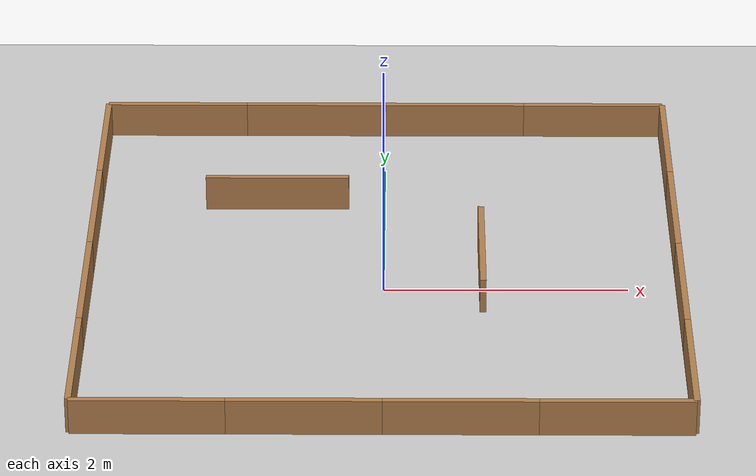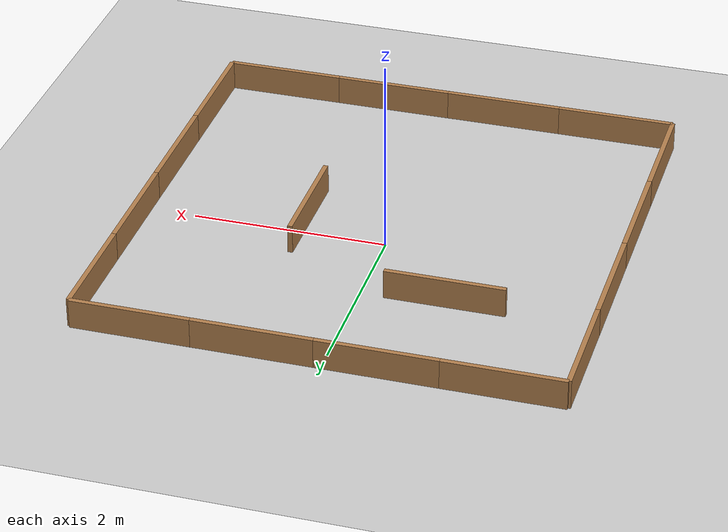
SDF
<?xml version='1.0' encoding='utf-8'?>
<sdf version="1.8">
  <world name="group3_custom">
    <physics name="default_physics" type="ode">
      <max_step_size>0.005</max_step_size>
      <real_time_factor>1.0</real_time_factor>
      <real_time_update_rate>200</real_time_update_rate>
    </physics>
    <plugin filename="libignition-gazebo6-physics-system.so" name="ignition::gazebo::systems::Physics" />
    <plugin filename="libignition-gazebo6-user-commands-system.so" name="ignition::gazebo::systems::UserCommands" />
    <plugin filename="libignition-gazebo6-scene-broadcaster-system.so" name="ignition::gazebo::systems::SceneBroadcaster" />
    <plugin filename="libignition-gazebo6-sensors-system.so" name="ignition::gazebo::systems::Sensors" />
    <scene>
      <ambient>0.6 0.6 0.6 1</ambient>
      <background>0.8 0.8 0.8 1</background>
      <shadows>false</shadows>
      <grid>true</grid>
    </scene>
    <light type="directional" name="sun">
      <cast_shadows>false</cast_shadows>
      <pose>0 0 10 0 0 0</pose>
      <diffuse>0.8 0.8 0.8 1</diffuse>
      <specular>0.2 0.2 0.2 1</specular>
      <direction>-0.5 0.1 -0.9</direction>
    </light>
    <model name="ground_plane">
      <static>true</static>
      <link name="link">
        <collision name="collision">
          <geometry>
            <plane>
              <normal>0 0 1</normal>
              <size>20 20</size>
            </plane>
          </geometry>
        </collision>
        <visual name="visual">
          <geometry>
            <plane>
              <normal>0 0 1</normal>
              <size>20 20</size>
            </plane>
          </geometry>
          <material>
            <ambient>0.8 0.8 0.8 1</ambient>
            <diffuse>0.8 0.8 0.8 1</diffuse>
            <specular>0.1 0.1 0.1 1</specular>
          </material>
        </visual>
      </link>
    </model>
    <gui fullscreen="0">
      <plugin filename="MinimalScene" name="3D View">
        <gz-gui>
          <title>3D View</title>
          <property type="bool" key="showTitleBar">false</property>
          <property type="string" key="state">docked</property>
        </gz-gui>
        <engine>ogre2</engine>
        <scene>scene</scene>
        <camera_pose>0 0 7.5 0 1.5708 0</camera_pose>
      </plugin>
      <plugin filename="GzSceneManager" name="Scene Manager">
        <gz-gui>
          <property key="resizable" type="bool">false</property>
          <property key="width" type="double">1</property>
          <property key="height" type="double">1</property>
          <property key="state" type="string">floating</property>
          <property key="showTitleBar" type="bool">false</property>
        </gz-gui>
      </plugin>
      <plugin filename="InteractiveViewControl" name="Interactive view control">
        <gz-gui>
          <property key="resizable" type="bool">false</property>
          <property key="width" type="double">1</property>
          <property key="height" type="double">1</property>
          <property key="state" type="string">floating</property>
          <property key="showTitleBar" type="bool">false</property>
        </gz-gui>
      </plugin>
      <plugin filename="EntityContextMenuPlugin" name="Entity context menu">
        <gz-gui>
          <property key="resizable" type="bool">false</property>
          <property key="width" type="double">1</property>
          <property key="height" type="double">1</property>
          <property key="state" type="string">floating</property>
          <property key="showTitleBar" type="bool">false</property>
        </gz-gui>
      </plugin>
      <plugin filename="CameraTracking" name="Camera Tracking">
        <gz-gui>
          <property key="width" type="double">1</property>
          <property key="height" type="double">1</property>
          <property key="state" type="string">floating</property>
          <property key="showTitleBar" type="bool">false</property>
        </gz-gui>
      </plugin>
      <plugin filename="ComponentInspector" name="Component inspector" />
      <plugin filename="EntityTree" name="Entity tree" />
    </gui>
    <include>
      <uri>model://wall120cm</uri>
      <name>group3_wall_1</name>
      <pose>-1.8 -2.4 0.15 0 0 0</pose>
    </include>
    <include>
      <uri>model://wall120cm</uri>
      <name>group3_wall_2</name>
      <pose>-1.8 2.4 0.15 0 0 0</pose>
    </include>
    <include>
      <uri>model://wall120cm</uri>
      <name>group3_wall_3</name>
      <pose>-2.4 -1.8 0.15 0 0 1.5707963267948966</pose>
    </include>
    <include>
      <uri>model://wall120cm</uri>
      <name>group3_wall_4</name>
      <pose>2.4 -1.8 0.15 0 0 1.5707963267948966</pose>
    </include>
    <include>
      <uri>model://wall120cm</uri>
      <name>group3_wall_5</name>
      <pose>-0.6 -2.4 0.15 0 0 0</pose>
    </include>
    <include>
      <uri>model://wall120cm</uri>
      <name>group3_wall_6</name>
      <pose>-0.6 2.4 0.15 0 0 0</pose>
    </include>
    <include>
      <uri>model://wall120cm</uri>
      <name>group3_wall_7</name>
      <pose>-2.4 -0.6 0.15 0 0 1.5707963267948966</pose>
    </include>
    <include>
      <uri>model://wall120cm</uri>
      <name>group3_wall_8</name>
      <pose>2.4 -0.6 0.15 0 0 1.5707963267948966</pose>
    </include>
    <include>
      <uri>model://wall120cm</uri>
      <name>group3_wall_9</name>
      <pose>0.6 -2.4 0.15 0 0 0</pose>
    </include>
    <include>
      <uri>model://wall120cm</uri>
      <name>group3_wall_10</name>
      <pose>0.6 2.4 0.15 0 0 0</pose>
    </include>
    <include>
      <uri>model://wall120cm</uri>
      <name>group3_wall_11</name>
      <pose>-2.4 0.6 0.15 0 0 1.5707963267948966</pose>
    </include>
    <include>
      <uri>model://wall120cm</uri>
      <name>group3_wall_12</name>
      <pose>2.4 0.6 0.15 0 0 1.5707963267948966</pose>
    </include>
    <include>
      <uri>model://wall120cm</uri>
      <name>group3_wall_13</name>
      <pose>1.8 -2.4 0.15 0 0 0</pose>
    </include>
    <include>
      <uri>model://wall120cm</uri>
      <name>group3_wall_14</name>
      <pose>1.8 2.4 0.15 0 0 0</pose>
    </include>
    <include>
      <uri>model://wall120cm</uri>
      <name>group3_wall_15</name>
      <pose>-2.4 1.8 0.15 0 0 1.5707963267948966</pose>
    </include>
    <include>
      <uri>model://wall120cm</uri>
      <name>group3_wall_16</name>
      <pose>2.4 1.8 0.15 0 0 1.5707963267948966</pose>
    </include>
    <include>
      <uri>model://wall120cm</uri>
      <name>group3_wall_17</name>
      <pose>0.8 0 0.15 0 0 1.5707963267948966</pose>
    </include>
    <include>
      <uri>model://wall120cm</uri>
      <name>group3_wall_18</name>
      <pose>-0.9 1.1 0.15 0 0 0</pose>
    </include>
  </world>
</sdf>

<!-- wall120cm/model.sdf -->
<sdf version='1.7'>
  <model name='wall120cm'>
    <pose>0 0 0 0 0 0</pose>
    <link name='Wall_11'>
      <collision name='Wall_11_Collision'>
        <geometry>
          <box>
            <size>1.2 0.05 0.3</size>
          </box>
        </geometry>
        <pose>0 0 0.15 0 -0 0</pose>
      </collision>
      <visual name='Wall_11_Visual'>
        <pose>0 0 0.15 0 -0 0</pose>
        <geometry>
          <box>
            <size>1.2 0.05 0.3</size>
          </box>
        </geometry>
        <material>
          <script>
            <uri>file://media/materials/scripts/gazebo.material</uri>
            <name>Gazebo/Wood</name>
          </script>
          <ambient>1 1 1 1</ambient>
        </material>
        <meta>
          <layer>0</layer>
        </meta>
      </visual>
      <pose>0 0 0 0 0 0</pose>
    </link>
    <static>1</static>
  </model>
</sdf>
